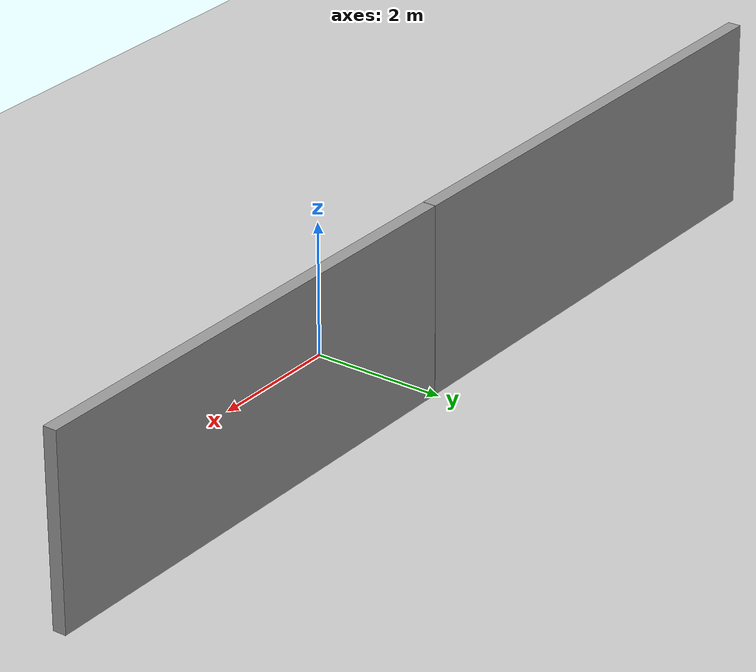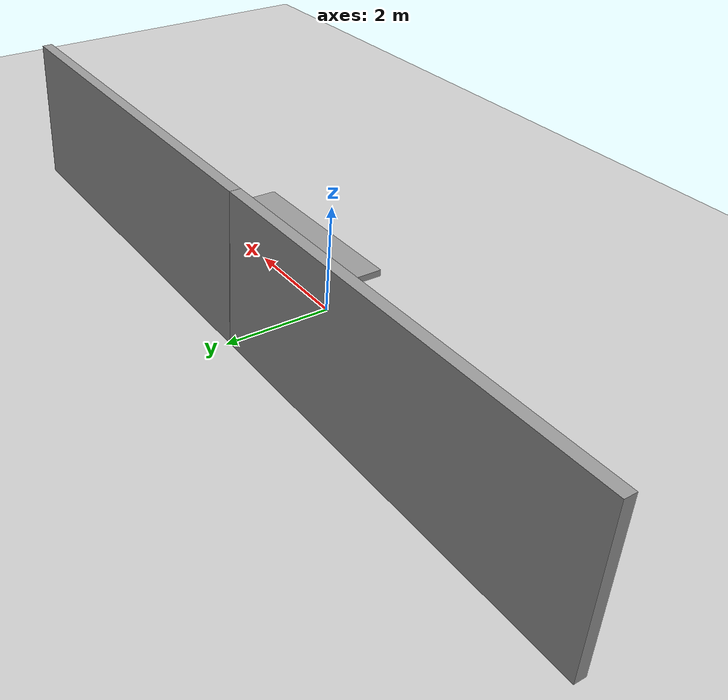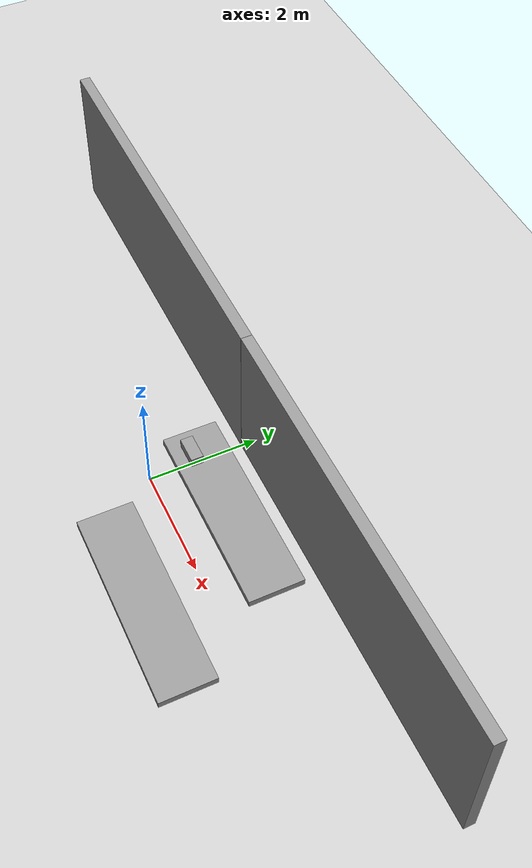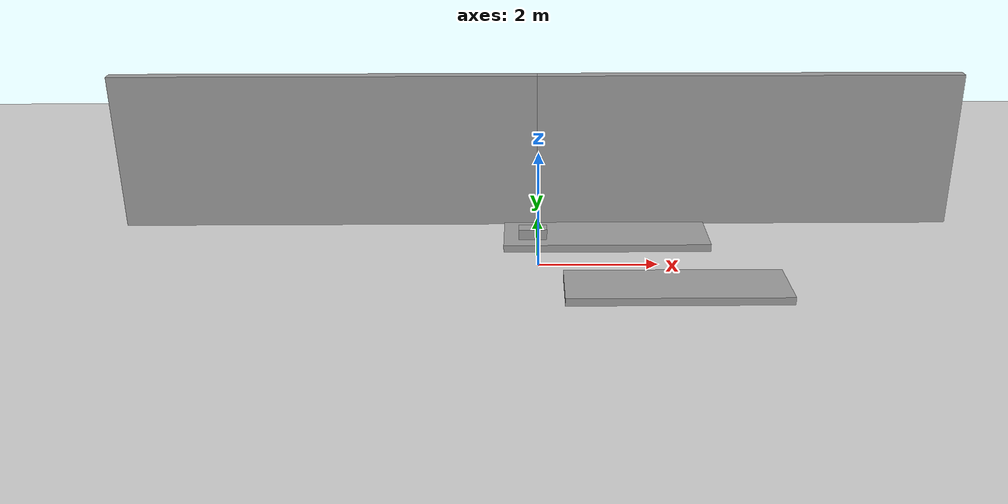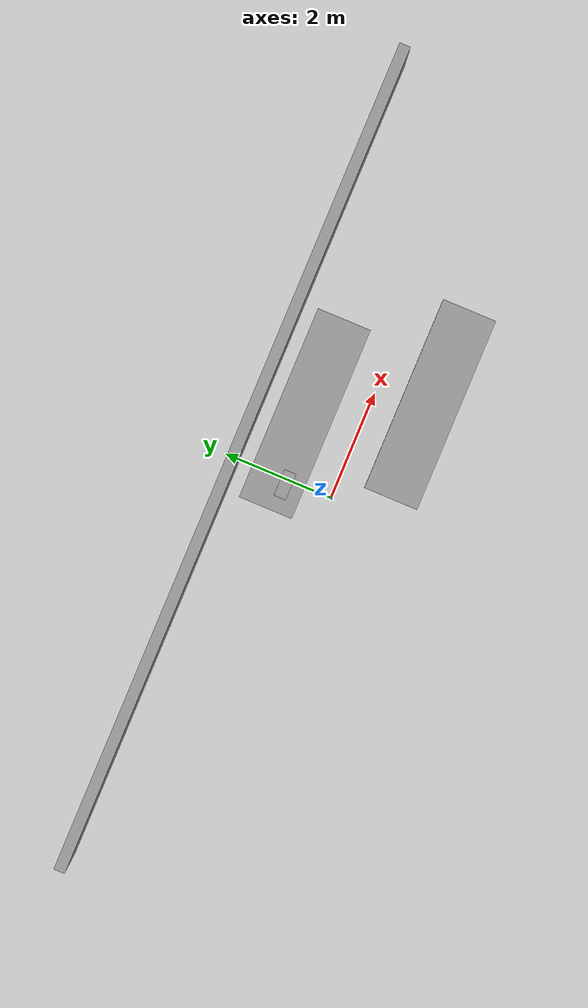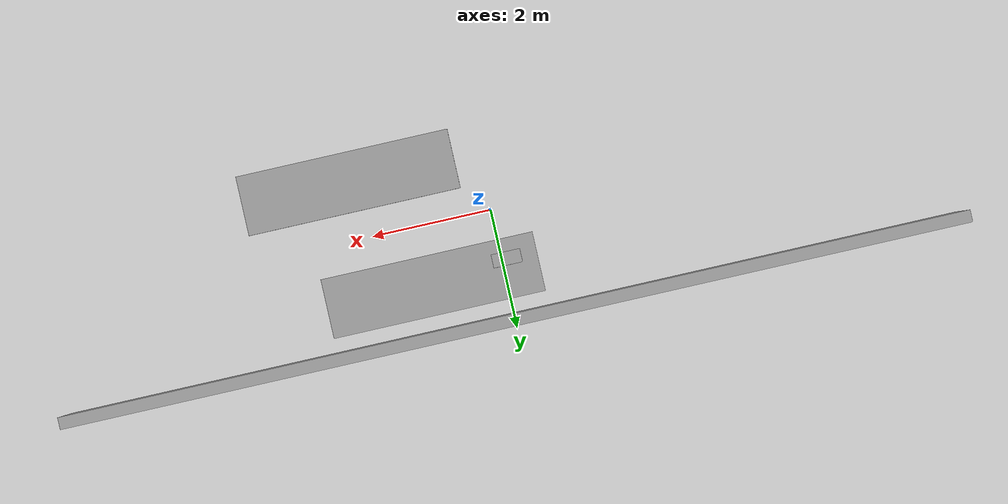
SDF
<sdf version="1.7">
 <world name="default">
  <light name="sun" type="directional">
   <pose>0 0 10 0 -0 0</pose>
   <diffuse>0.8 0.8 0.8 1</diffuse>
   <specular>0.2 0.2 0.2 1</specular>
   <attenuation>
    <range>1000</range>
    <constant>0.9</constant>
    <linear>0.01</linear>
    <quadratic>0.001</quadratic>
   </attenuation>
   <direction>-0.5 0.1 -0.9</direction>
   <spot><inner_angle>0</inner_angle><outer_angle>0</outer_angle><falloff>0</falloff></spot>
  </light>
  <model name="ground_plane">
   <static>1</static>
   <link name="link">
    <collision name="collision">
     <geometry><plane><normal>0 0 1</normal><size>100 100</size></plane></geometry>
     <surface>
      <contact><collide_bitmask>65535</collide_bitmask></contact>
      <friction><ode><mu>100</mu><mu2>50</mu2></ode></friction>
     </surface>
    </collision>
    <visual name="visual">
     <cast_shadows>0</cast_shadows>
     <geometry><plane><normal>0 0 1</normal><size>100 100</size></plane></geometry>
     <material>
      <script><uri>file://media/materials/scripts/gazebo.material</uri><name>Gazebo/Grey</name></script>
     </material>
    </visual>
   </link>
  </model>
  <gravity>0 0 -9.8</gravity>
  <magnetic_field>6e-06 2.3e-05 -4.2e-05</magnetic_field>
  <atmosphere type="adiabatic"/>
  <physics type="ode">
   <max_step_size>0.001</max_step_size>
   <real_time_factor>1</real_time_factor>
   <real_time_update_rate>1000</real_time_update_rate>
  </physics>
  <scene><ambient>0.4 0.4 0.4 1</ambient><background>0.7 0.7 0.7 1</background><shadows>1</shadows></scene>
  <spherical_coordinates>
   <surface_model>EARTH_WGS84</surface_model>
   <latitude_deg>0</latitude_deg>
   <longitude_deg>0</longitude_deg>
   <elevation>0</elevation>
   <heading_deg>0</heading_deg>
  </spherical_coordinates>
  <model name="Untitled">
   <link name="link_0">
    <inertial>
     <mass>50.4695</mass>
     <inertia><ixx>4.27776</ixx><ixy>0</ixy><ixz>0</ixz><iyy>54.2377</iyy><iyz>0</iyz><izz>58.3715</izz></inertia>
    </inertial>
    <pose>0.351532 0.072936 0.034045 0 -0 0</pose>
    <kinematic>1</kinematic>
    <visual name="visual">
     <geometry><box><size>3.58871 1 0.130818</size></box></geometry>
     <material>
      <lighting>1</lighting>
      <script><uri>file://media/materials/scripts/gazebo.material</uri><name>Gazebo/Grey</name></script>
      <shader type="pixel"><normal_map>__default__</normal_map></shader>
     </material>
    </visual>
    <collision name="collision">
     <geometry><box><size>3.58871 1 0.130818</size></box></geometry>
     <surface>
      <friction>
       <ode><mu>1</mu><mu2>1</mu2><fdir1>0 0 0</fdir1><slip1>0</slip1><slip2>0</slip2></ode>
       <torsional>
        <coefficient>1</coefficient>
        <patch_radius>0</patch_radius>
        <surface_radius>0</surface_radius>
        <use_patch_radius>1</use_patch_radius>
        <ode><slip>0</slip></ode>
       </torsional>
      </friction>
      <bounce><restitution_coefficient>0</restitution_coefficient><threshold>1e+06</threshold></bounce>
      <contact>
       <collide_without_contact>0</collide_without_contact>
       <collide_without_contact_bitmask>1</collide_without_contact_bitmask>
       <collide_bitmask>1</collide_bitmask>
       <ode>
        <soft_cfm>0</soft_cfm>
        <soft_erp>0.2</soft_erp>
        <kp>1e+13</kp>
        <kd>1</kd>
        <max_vel>0.01</max_vel>
        <min_depth>0</min_depth>
       </ode>
       <bullet>
        <split_impulse>1</split_impulse>
        <split_impulse_penetration_threshold>-0.01</split_impulse_penetration_threshold>
        <soft_cfm>0</soft_cfm>
        <soft_erp>0.2</soft_erp>
        <kp>1e+13</kp>
        <kd>1</kd>
       </bullet>
      </contact>
     </surface>
    </collision>
   </link>
   <link name="link_0_clone">
    <inertial>
     <mass>50.4695</mass>
     <inertia><ixx>4.27776</ixx><ixy>0</ixy><ixz>0</ixz><iyy>54.2376</iyy><iyz>0</iyz><izz>58.3715</izz></inertia>
    </inertial>
    <pose>1.34776 -1.89609 0.034045 0 -0 0</pose>
    <kinematic>1</kinematic>
    <visual name="visual">
     <geometry><box><size>3.58871 1 0.130818</size></box></geometry>
     <material>
      <lighting>1</lighting>
      <script><uri>file://media/materials/scripts/gazebo.material</uri><name>Gazebo/Grey</name></script>
      <shader type="pixel"><normal_map>__default__</normal_map></shader>
     </material>
    </visual>
    <collision name="collision">
     <geometry><box><size>3.58871 1 0.130818</size></box></geometry>
     <surface>
      <friction>
       <ode><mu>1</mu><mu2>1</mu2><fdir1>0 0 0</fdir1><slip1>0</slip1><slip2>0</slip2></ode>
       <torsional>
        <coefficient>1</coefficient>
        <patch_radius>0</patch_radius>
        <surface_radius>0</surface_radius>
        <use_patch_radius>1</use_patch_radius>
        <ode><slip>0</slip></ode>
       </torsional>
      </friction>
      <bounce><restitution_coefficient>0</restitution_coefficient><threshold>1e+06</threshold></bounce>
      <contact>
       <collide_without_contact>0</collide_without_contact>
       <collide_without_contact_bitmask>1</collide_without_contact_bitmask>
       <collide_bitmask>1</collide_bitmask>
       <ode>
        <soft_cfm>0</soft_cfm>
        <soft_erp>0.2</soft_erp>
        <kp>1e+13</kp>
        <kd>1</kd>
        <max_vel>0.01</max_vel>
        <min_depth>0</min_depth>
       </ode>
       <bullet>
        <split_impulse>1</split_impulse>
        <split_impulse_penetration_threshold>-0.01</split_impulse_penetration_threshold>
        <soft_cfm>0</soft_cfm>
        <soft_erp>0.2</soft_erp>
        <kp>1e+13</kp>
        <kd>1</kd>
       </bullet>
      </contact>
     </surface>
    </collision>
   </link>
   <model name="grey_wall">
    <static>1</static>
    <link name="link">
     <pose>0 0 1.4 0 -0 0</pose>
     <collision name="collision"><geometry><box><size>7.5 0.2 2.8</size></box></geometry></collision>
     <visual name="visual">
      <cast_shadows>0</cast_shadows>
      <geometry><box><size>7.5 0.2 2.8</size></box></geometry>
      <material>
       <script>
        <uri>model://grey_wall/materials/scripts</uri>
        <uri>model://grey_wall/materials/textures</uri>
        <name>vrc/grey_wall</name>
       </script>
      </material>
     </visual>
    </link>
    <pose>2.90314 0.912297 -0.034045 0 -0 0</pose>
   </model>
   <model name="grey_wall_0">
    <static>1</static>
    <link name="link">
     <pose>0 0 1.4 0 -0 0</pose>
     <collision name="collision"><geometry><box><size>7.5 0.2 2.8</size></box></geometry></collision>
     <visual name="visual">
      <cast_shadows>0</cast_shadows>
      <geometry><box><size>7.5 0.2 2.8</size></box></geometry>
      <material>
       <script>
        <uri>model://grey_wall/materials/scripts</uri>
        <uri>model://grey_wall/materials/textures</uri>
        <name>vrc/grey_wall</name>
       </script>
      </material>
     </visual>
    </link>
    <pose>-4.60244 0.910866 -0.034045 0 -0 0</pose>
   </model>
   <static>0</static>
   <pose>0.846488 0.925076 0.034045 0 -0 0</pose>
  </model>
  <model name="Untitled_0">
   <link name="link_2">
    <inertial>
     <mass>0.0202738</mass>
     <inertia>
      <ixx>0.000143313</ixx>
      <ixy>0</ixy>
      <ixz>0</ixz>
      <iyy>0.000459371</iyy>
      <iyz>0</iyz>
      <izz>0.000488276</izz>
     </inertia>
    </inertial>
    <visual name="visual">
     <geometry><box><size>0.487895 0.22576 0.184008</size></box></geometry>
     <material>
      <lighting>1</lighting>
      <script><uri>file://media/materials/scripts/gazebo.material</uri><name>Gazebo/Grey</name></script>
      <shader type="pixel"/>
     </material>
    </visual>
    <collision name="collision">
     <geometry><box><size>0.487895 0.22576 0.184008</size></box></geometry>
     <surface>
      <friction>
       <ode><mu>1</mu><mu2>1</mu2><fdir1>0 0 0</fdir1><slip1>0</slip1><slip2>0</slip2></ode>
       <torsional>
        <coefficient>1</coefficient>
        <patch_radius>0</patch_radius>
        <surface_radius>0</surface_radius>
        <use_patch_radius>1</use_patch_radius>
        <ode><slip>0</slip></ode>
       </torsional>
      </friction>
      <bounce><restitution_coefficient>0</restitution_coefficient><threshold>1e+06</threshold></bounce>
      <contact>
       <collide_without_contact>0</collide_without_contact>
       <collide_without_contact_bitmask>1</collide_without_contact_bitmask>
       <collide_bitmask>1</collide_bitmask>
       <ode>
        <soft_cfm>0</soft_cfm>
        <soft_erp>0.2</soft_erp>
        <kp>1e+13</kp>
        <kd>1</kd>
        <max_vel>0.01</max_vel>
        <min_depth>0</min_depth>
       </ode>
       <bullet>
        <split_impulse>1</split_impulse>
        <split_impulse_penetration_threshold>-0.01</split_impulse_penetration_threshold>
        <soft_cfm>0</soft_cfm>
        <soft_erp>0.2</soft_erp>
        <kp>1e+13</kp>
        <kd>1</kd>
       </bullet>
      </contact>
     </surface>
    </collision>
   </link>
   <static>0</static>
   <pose>-0.088463 0.836182 0.232641 0 -0 0</pose>
  </model>
 </world>
</sdf>
